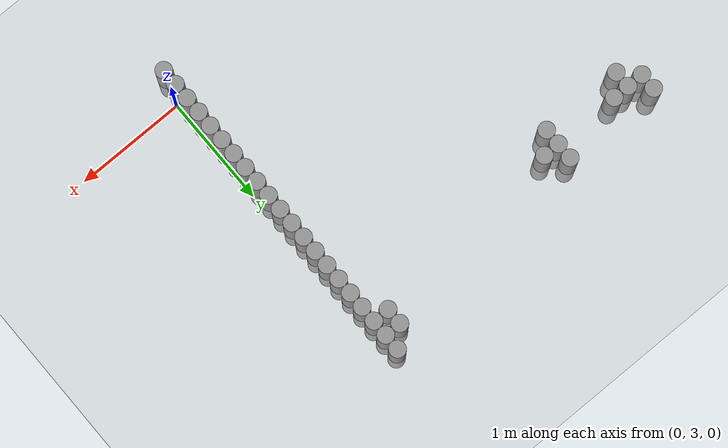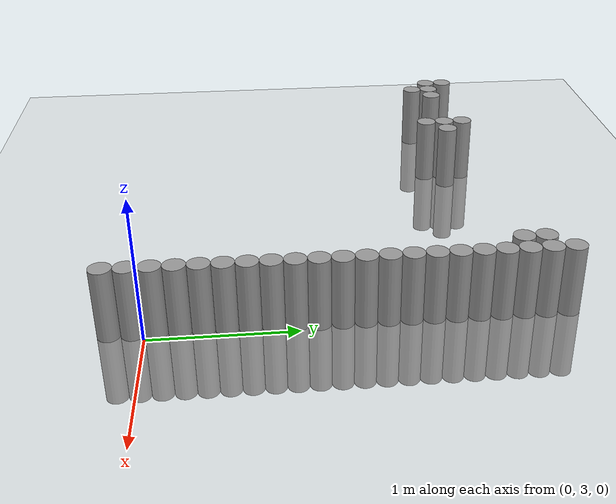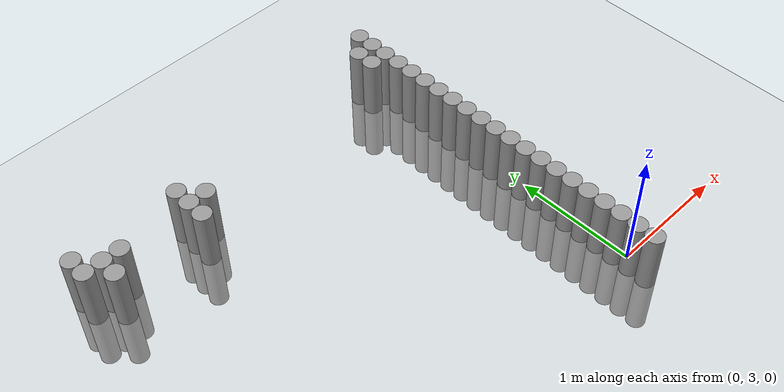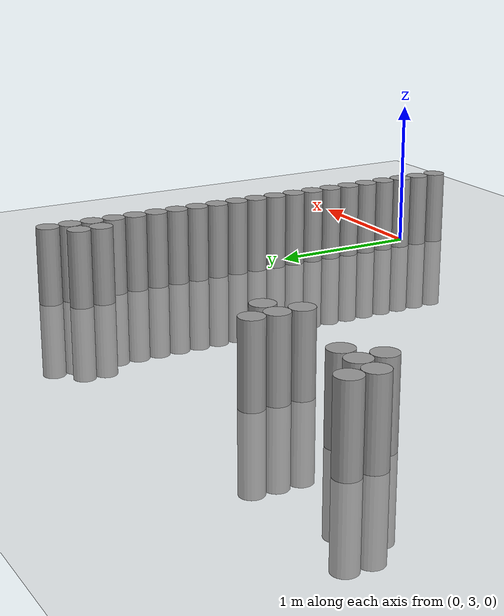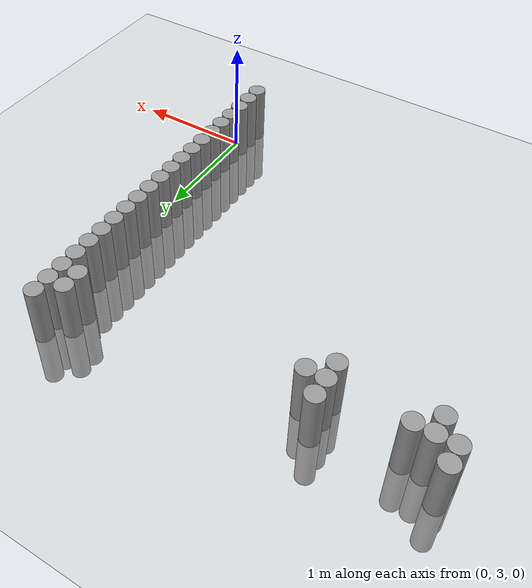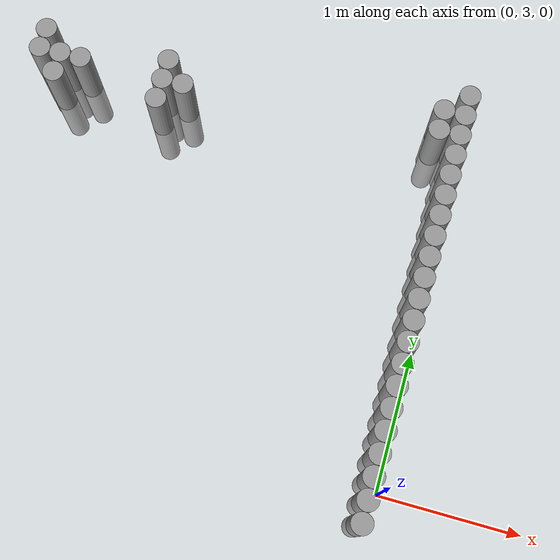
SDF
<sdf version="1.6">
 <world name="default">
  <model name="ground_plane">
   <static>1</static>
   <static>1</static>
   <link name="link">
    <collision name="collision">
     <geometry><plane><normal>0 0 1</normal><size>100 100</size></plane></geometry>
     <surface><friction><ode><mu>100</mu><mu2>50</mu2></ode></friction></surface>
    </collision>
    <visual name="visual">
     <cast_shadows>0</cast_shadows>
     <geometry><plane><normal>0 0 1</normal><size>100 100</size></plane></geometry>
     <material>
      <script><uri>file://media/materials/scripts/gazebo.material</uri><name>Gazebo/Grey</name></script>
     </material>
    </visual>
   </link>
  </model>
  <model name="unit_cylinder_64">
   <static>1</static>
   <pose>-0.075000 2.775000 0.000000 0.000000 0.000000 0.000000</pose>
   <link name="link">
    <inertial>
     <mass>1</mass>
     <inertia><ixx>0.145833</ixx><ixy>0</ixy><ixz>0</ixz><iyy>0.145833</iyy><iyz>0</iyz><izz>0.125</izz></inertia>
    </inertial>
    <collision name="collision">
     <geometry><cylinder><radius>0.075000</radius><length>1</length></cylinder></geometry>
    </collision>
    <visual name="visual">
     <geometry><cylinder><radius>0.075000</radius><length>1</length></cylinder></geometry>
     <material>
      <script><name>Gazebo/Grey</name><uri>file://media/materials/scripts/gazebo.material</uri></script>
     </material>
    </visual>
   </link>
  </model>
  <model name="unit_cylinder_66">
   <static>1</static>
   <pose>-0.075000 2.925000 0.000000 0.000000 0.000000 0.000000</pose>
   <link name="link">
    <inertial>
     <mass>1</mass>
     <inertia><ixx>0.145833</ixx><ixy>0</ixy><ixz>0</ixz><iyy>0.145833</iyy><iyz>0</iyz><izz>0.125</izz></inertia>
    </inertial>
    <collision name="collision">
     <geometry><cylinder><radius>0.075000</radius><length>1</length></cylinder></geometry>
    </collision>
    <visual name="visual">
     <geometry><cylinder><radius>0.075000</radius><length>1</length></cylinder></geometry>
     <material>
      <script><name>Gazebo/Grey</name><uri>file://media/materials/scripts/gazebo.material</uri></script>
     </material>
    </visual>
   </link>
  </model>
  <model name="unit_cylinder_68">
   <static>1</static>
   <pose>-0.075000 3.075000 0.000000 0.000000 0.000000 0.000000</pose>
   <link name="link">
    <inertial>
     <mass>1</mass>
     <inertia><ixx>0.145833</ixx><ixy>0</ixy><ixz>0</ixz><iyy>0.145833</iyy><iyz>0</iyz><izz>0.125</izz></inertia>
    </inertial>
    <collision name="collision">
     <geometry><cylinder><radius>0.075000</radius><length>1</length></cylinder></geometry>
    </collision>
    <visual name="visual">
     <geometry><cylinder><radius>0.075000</radius><length>1</length></cylinder></geometry>
     <material>
      <script><name>Gazebo/Grey</name><uri>file://media/materials/scripts/gazebo.material</uri></script>
     </material>
    </visual>
   </link>
  </model>
  <model name="unit_cylinder_70">
   <static>1</static>
   <pose>-0.075000 3.225000 0.000000 0.000000 0.000000 0.000000</pose>
   <link name="link">
    <inertial>
     <mass>1</mass>
     <inertia><ixx>0.145833</ixx><ixy>0</ixy><ixz>0</ixz><iyy>0.145833</iyy><iyz>0</iyz><izz>0.125</izz></inertia>
    </inertial>
    <collision name="collision">
     <geometry><cylinder><radius>0.075000</radius><length>1</length></cylinder></geometry>
    </collision>
    <visual name="visual">
     <geometry><cylinder><radius>0.075000</radius><length>1</length></cylinder></geometry>
     <material>
      <script><name>Gazebo/Grey</name><uri>file://media/materials/scripts/gazebo.material</uri></script>
     </material>
    </visual>
   </link>
  </model>
  <model name="unit_cylinder_72">
   <static>1</static>
   <pose>-0.075000 3.375000 0.000000 0.000000 0.000000 0.000000</pose>
   <link name="link">
    <inertial>
     <mass>1</mass>
     <inertia><ixx>0.145833</ixx><ixy>0</ixy><ixz>0</ixz><iyy>0.145833</iyy><iyz>0</iyz><izz>0.125</izz></inertia>
    </inertial>
    <collision name="collision">
     <geometry><cylinder><radius>0.075000</radius><length>1</length></cylinder></geometry>
    </collision>
    <visual name="visual">
     <geometry><cylinder><radius>0.075000</radius><length>1</length></cylinder></geometry>
     <material>
      <script><name>Gazebo/Grey</name><uri>file://media/materials/scripts/gazebo.material</uri></script>
     </material>
    </visual>
   </link>
  </model>
  <model name="unit_cylinder_74">
   <static>1</static>
   <pose>-0.075000 3.525000 0.000000 0.000000 0.000000 0.000000</pose>
   <link name="link">
    <inertial>
     <mass>1</mass>
     <inertia><ixx>0.145833</ixx><ixy>0</ixy><ixz>0</ixz><iyy>0.145833</iyy><iyz>0</iyz><izz>0.125</izz></inertia>
    </inertial>
    <collision name="collision">
     <geometry><cylinder><radius>0.075000</radius><length>1</length></cylinder></geometry>
    </collision>
    <visual name="visual">
     <geometry><cylinder><radius>0.075000</radius><length>1</length></cylinder></geometry>
     <material>
      <script><name>Gazebo/Grey</name><uri>file://media/materials/scripts/gazebo.material</uri></script>
     </material>
    </visual>
   </link>
  </model>
  <model name="unit_cylinder_76">
   <static>1</static>
   <pose>-0.075000 3.675000 0.000000 0.000000 0.000000 0.000000</pose>
   <link name="link">
    <inertial>
     <mass>1</mass>
     <inertia><ixx>0.145833</ixx><ixy>0</ixy><ixz>0</ixz><iyy>0.145833</iyy><iyz>0</iyz><izz>0.125</izz></inertia>
    </inertial>
    <collision name="collision">
     <geometry><cylinder><radius>0.075000</radius><length>1</length></cylinder></geometry>
    </collision>
    <visual name="visual">
     <geometry><cylinder><radius>0.075000</radius><length>1</length></cylinder></geometry>
     <material>
      <script><name>Gazebo/Grey</name><uri>file://media/materials/scripts/gazebo.material</uri></script>
     </material>
    </visual>
   </link>
  </model>
  <model name="unit_cylinder_78">
   <static>1</static>
   <pose>-0.075000 3.825000 0.000000 0.000000 0.000000 0.000000</pose>
   <link name="link">
    <inertial>
     <mass>1</mass>
     <inertia><ixx>0.145833</ixx><ixy>0</ixy><ixz>0</ixz><iyy>0.145833</iyy><iyz>0</iyz><izz>0.125</izz></inertia>
    </inertial>
    <collision name="collision">
     <geometry><cylinder><radius>0.075000</radius><length>1</length></cylinder></geometry>
    </collision>
    <visual name="visual">
     <geometry><cylinder><radius>0.075000</radius><length>1</length></cylinder></geometry>
     <material>
      <script><name>Gazebo/Grey</name><uri>file://media/materials/scripts/gazebo.material</uri></script>
     </material>
    </visual>
   </link>
  </model>
  <model name="unit_cylinder_80">
   <static>1</static>
   <pose>-0.075000 3.975000 0.000000 0.000000 0.000000 0.000000</pose>
   <link name="link">
    <inertial>
     <mass>1</mass>
     <inertia><ixx>0.145833</ixx><ixy>0</ixy><ixz>0</ixz><iyy>0.145833</iyy><iyz>0</iyz><izz>0.125</izz></inertia>
    </inertial>
    <collision name="collision">
     <geometry><cylinder><radius>0.075000</radius><length>1</length></cylinder></geometry>
    </collision>
    <visual name="visual">
     <geometry><cylinder><radius>0.075000</radius><length>1</length></cylinder></geometry>
     <material>
      <script><name>Gazebo/Grey</name><uri>file://media/materials/scripts/gazebo.material</uri></script>
     </material>
    </visual>
   </link>
  </model>
  <model name="unit_cylinder_82">
   <static>1</static>
   <pose>-0.075000 4.125000 0.000000 0.000000 0.000000 0.000000</pose>
   <link name="link">
    <inertial>
     <mass>1</mass>
     <inertia><ixx>0.145833</ixx><ixy>0</ixy><ixz>0</ixz><iyy>0.145833</iyy><iyz>0</iyz><izz>0.125</izz></inertia>
    </inertial>
    <collision name="collision">
     <geometry><cylinder><radius>0.075000</radius><length>1</length></cylinder></geometry>
    </collision>
    <visual name="visual">
     <geometry><cylinder><radius>0.075000</radius><length>1</length></cylinder></geometry>
     <material>
      <script><name>Gazebo/Grey</name><uri>file://media/materials/scripts/gazebo.material</uri></script>
     </material>
    </visual>
   </link>
  </model>
  <model name="unit_cylinder_84">
   <static>1</static>
   <pose>-0.075000 4.275000 0.000000 0.000000 0.000000 0.000000</pose>
   <link name="link">
    <inertial>
     <mass>1</mass>
     <inertia><ixx>0.145833</ixx><ixy>0</ixy><ixz>0</ixz><iyy>0.145833</iyy><iyz>0</iyz><izz>0.125</izz></inertia>
    </inertial>
    <collision name="collision">
     <geometry><cylinder><radius>0.075000</radius><length>1</length></cylinder></geometry>
    </collision>
    <visual name="visual">
     <geometry><cylinder><radius>0.075000</radius><length>1</length></cylinder></geometry>
     <material>
      <script><name>Gazebo/Grey</name><uri>file://media/materials/scripts/gazebo.material</uri></script>
     </material>
    </visual>
   </link>
  </model>
  <model name="unit_cylinder_86">
   <static>1</static>
   <pose>-0.075000 4.425000 0.000000 0.000000 0.000000 0.000000</pose>
   <link name="link">
    <inertial>
     <mass>1</mass>
     <inertia><ixx>0.145833</ixx><ixy>0</ixy><ixz>0</ixz><iyy>0.145833</iyy><iyz>0</iyz><izz>0.125</izz></inertia>
    </inertial>
    <collision name="collision">
     <geometry><cylinder><radius>0.075000</radius><length>1</length></cylinder></geometry>
    </collision>
    <visual name="visual">
     <geometry><cylinder><radius>0.075000</radius><length>1</length></cylinder></geometry>
     <material>
      <script><name>Gazebo/Grey</name><uri>file://media/materials/scripts/gazebo.material</uri></script>
     </material>
    </visual>
   </link>
  </model>
  <model name="unit_cylinder_88">
   <static>1</static>
   <pose>-0.075000 4.575000 0.000000 0.000000 0.000000 0.000000</pose>
   <link name="link">
    <inertial>
     <mass>1</mass>
     <inertia><ixx>0.145833</ixx><ixy>0</ixy><ixz>0</ixz><iyy>0.145833</iyy><iyz>0</iyz><izz>0.125</izz></inertia>
    </inertial>
    <collision name="collision">
     <geometry><cylinder><radius>0.075000</radius><length>1</length></cylinder></geometry>
    </collision>
    <visual name="visual">
     <geometry><cylinder><radius>0.075000</radius><length>1</length></cylinder></geometry>
     <material>
      <script><name>Gazebo/Grey</name><uri>file://media/materials/scripts/gazebo.material</uri></script>
     </material>
    </visual>
   </link>
  </model>
  <model name="unit_cylinder_90">
   <static>1</static>
   <pose>-0.075000 4.725000 0.000000 0.000000 0.000000 0.000000</pose>
   <link name="link">
    <inertial>
     <mass>1</mass>
     <inertia><ixx>0.145833</ixx><ixy>0</ixy><ixz>0</ixz><iyy>0.145833</iyy><iyz>0</iyz><izz>0.125</izz></inertia>
    </inertial>
    <collision name="collision">
     <geometry><cylinder><radius>0.075000</radius><length>1</length></cylinder></geometry>
    </collision>
    <visual name="visual">
     <geometry><cylinder><radius>0.075000</radius><length>1</length></cylinder></geometry>
     <material>
      <script><name>Gazebo/Grey</name><uri>file://media/materials/scripts/gazebo.material</uri></script>
     </material>
    </visual>
   </link>
  </model>
  <model name="unit_cylinder_92">
   <static>1</static>
   <pose>-0.075000 4.875000 0.000000 0.000000 0.000000 0.000000</pose>
   <link name="link">
    <inertial>
     <mass>1</mass>
     <inertia><ixx>0.145833</ixx><ixy>0</ixy><ixz>0</ixz><iyy>0.145833</iyy><iyz>0</iyz><izz>0.125</izz></inertia>
    </inertial>
    <collision name="collision">
     <geometry><cylinder><radius>0.075000</radius><length>1</length></cylinder></geometry>
    </collision>
    <visual name="visual">
     <geometry><cylinder><radius>0.075000</radius><length>1</length></cylinder></geometry>
     <material>
      <script><name>Gazebo/Grey</name><uri>file://media/materials/scripts/gazebo.material</uri></script>
     </material>
    </visual>
   </link>
  </model>
  <model name="unit_cylinder_94">
   <static>1</static>
   <pose>-0.075000 5.025000 0.000000 0.000000 0.000000 0.000000</pose>
   <link name="link">
    <inertial>
     <mass>1</mass>
     <inertia><ixx>0.145833</ixx><ixy>0</ixy><ixz>0</ixz><iyy>0.145833</iyy><iyz>0</iyz><izz>0.125</izz></inertia>
    </inertial>
    <collision name="collision">
     <geometry><cylinder><radius>0.075000</radius><length>1</length></cylinder></geometry>
    </collision>
    <visual name="visual">
     <geometry><cylinder><radius>0.075000</radius><length>1</length></cylinder></geometry>
     <material>
      <script><name>Gazebo/Grey</name><uri>file://media/materials/scripts/gazebo.material</uri></script>
     </material>
    </visual>
   </link>
  </model>
  <model name="unit_cylinder_162">
   <static>1</static>
   <pose>-3.075000 5.325000 0.000000 0.000000 0.000000 0.000000</pose>
   <link name="link">
    <inertial>
     <mass>1</mass>
     <inertia><ixx>0.145833</ixx><ixy>0</ixy><ixz>0</ixz><iyy>0.145833</iyy><iyz>0</iyz><izz>0.125</izz></inertia>
    </inertial>
    <collision name="collision">
     <geometry><cylinder><radius>0.075000</radius><length>1</length></cylinder></geometry>
    </collision>
    <visual name="visual">
     <geometry><cylinder><radius>0.075000</radius><length>1</length></cylinder></geometry>
     <material>
      <script><name>Gazebo/Grey</name><uri>file://media/materials/scripts/gazebo.material</uri></script>
     </material>
    </visual>
   </link>
  </model>
  <model name="unit_cylinder_163">
   <static>1</static>
   <pose>-3.075000 5.475000 0.000000 0.000000 0.000000 0.000000</pose>
   <link name="link">
    <inertial>
     <mass>1</mass>
     <inertia><ixx>0.145833</ixx><ixy>0</ixy><ixz>0</ixz><iyy>0.145833</iyy><iyz>0</iyz><izz>0.125</izz></inertia>
    </inertial>
    <collision name="collision">
     <geometry><cylinder><radius>0.075000</radius><length>1</length></cylinder></geometry>
    </collision>
    <visual name="visual">
     <geometry><cylinder><radius>0.075000</radius><length>1</length></cylinder></geometry>
     <material>
      <script><name>Gazebo/Grey</name><uri>file://media/materials/scripts/gazebo.material</uri></script>
     </material>
    </visual>
   </link>
  </model>
  <model name="unit_cylinder_168">
   <static>1</static>
   <pose>-2.925000 5.175000 0.000000 0.000000 0.000000 0.000000</pose>
   <link name="link">
    <inertial>
     <mass>1</mass>
     <inertia><ixx>0.145833</ixx><ixy>0</ixy><ixz>0</ixz><iyy>0.145833</iyy><iyz>0</iyz><izz>0.125</izz></inertia>
    </inertial>
    <collision name="collision">
     <geometry><cylinder><radius>0.075000</radius><length>1</length></cylinder></geometry>
    </collision>
    <visual name="visual">
     <geometry><cylinder><radius>0.075000</radius><length>1</length></cylinder></geometry>
     <material>
      <script><name>Gazebo/Grey</name><uri>file://media/materials/scripts/gazebo.material</uri></script>
     </material>
    </visual>
   </link>
  </model>
  <model name="unit_cylinder_169">
   <static>1</static>
   <pose>-2.925000 5.325000 0.000000 0.000000 0.000000 0.000000</pose>
   <link name="link">
    <inertial>
     <mass>1</mass>
     <inertia><ixx>0.145833</ixx><ixy>0</ixy><ixz>0</ixz><iyy>0.145833</iyy><iyz>0</iyz><izz>0.125</izz></inertia>
    </inertial>
    <collision name="collision">
     <geometry><cylinder><radius>0.075000</radius><length>1</length></cylinder></geometry>
    </collision>
    <visual name="visual">
     <geometry><cylinder><radius>0.075000</radius><length>1</length></cylinder></geometry>
     <material>
      <script><name>Gazebo/Grey</name><uri>file://media/materials/scripts/gazebo.material</uri></script>
     </material>
    </visual>
   </link>
  </model>
  <model name="unit_cylinder_172">
   <static>1</static>
   <pose>-2.775000 5.325000 0.000000 0.000000 0.000000 0.000000</pose>
   <link name="link">
    <inertial>
     <mass>1</mass>
     <inertia><ixx>0.145833</ixx><ixy>0</ixy><ixz>0</ixz><iyy>0.145833</iyy><iyz>0</iyz><izz>0.125</izz></inertia>
    </inertial>
    <collision name="collision">
     <geometry><cylinder><radius>0.075000</radius><length>1</length></cylinder></geometry>
    </collision>
    <visual name="visual">
     <geometry><cylinder><radius>0.075000</radius><length>1</length></cylinder></geometry>
     <material>
      <script><name>Gazebo/Grey</name><uri>file://media/materials/scripts/gazebo.material</uri></script>
     </material>
    </visual>
   </link>
  </model>
  <model name="unit_cylinder_179">
   <static>1</static>
   <pose>-2.175000 5.175000 0.000000 0.000000 0.000000 0.000000</pose>
   <link name="link">
    <inertial>
     <mass>1</mass>
     <inertia><ixx>0.145833</ixx><ixy>0</ixy><ixz>0</ixz><iyy>0.145833</iyy><iyz>0</iyz><izz>0.125</izz></inertia>
    </inertial>
    <collision name="collision">
     <geometry><cylinder><radius>0.075000</radius><length>1</length></cylinder></geometry>
    </collision>
    <visual name="visual">
     <geometry><cylinder><radius>0.075000</radius><length>1</length></cylinder></geometry>
     <material>
      <script><name>Gazebo/Grey</name><uri>file://media/materials/scripts/gazebo.material</uri></script>
     </material>
    </visual>
   </link>
  </model>
  <model name="unit_cylinder_180">
   <static>1</static>
   <pose>-2.175000 5.325000 0.000000 0.000000 0.000000 0.000000</pose>
   <link name="link">
    <inertial>
     <mass>1</mass>
     <inertia><ixx>0.145833</ixx><ixy>0</ixy><ixz>0</ixz><iyy>0.145833</iyy><iyz>0</iyz><izz>0.125</izz></inertia>
    </inertial>
    <collision name="collision">
     <geometry><cylinder><radius>0.075000</radius><length>1</length></cylinder></geometry>
    </collision>
    <visual name="visual">
     <geometry><cylinder><radius>0.075000</radius><length>1</length></cylinder></geometry>
     <material>
      <script><name>Gazebo/Grey</name><uri>file://media/materials/scripts/gazebo.material</uri></script>
     </material>
    </visual>
   </link>
  </model>
  <model name="unit_cylinder_181">
   <static>1</static>
   <pose>-2.175000 5.475000 0.000000 0.000000 0.000000 0.000000</pose>
   <link name="link">
    <inertial>
     <mass>1</mass>
     <inertia><ixx>0.145833</ixx><ixy>0</ixy><ixz>0</ixz><iyy>0.145833</iyy><iyz>0</iyz><izz>0.125</izz></inertia>
    </inertial>
    <collision name="collision">
     <geometry><cylinder><radius>0.075000</radius><length>1</length></cylinder></geometry>
    </collision>
    <visual name="visual">
     <geometry><cylinder><radius>0.075000</radius><length>1</length></cylinder></geometry>
     <material>
      <script><name>Gazebo/Grey</name><uri>file://media/materials/scripts/gazebo.material</uri></script>
     </material>
    </visual>
   </link>
  </model>
  <model name="unit_cylinder_184">
   <static>1</static>
   <pose>-2.025000 5.325000 0.000000 0.000000 0.000000 0.000000</pose>
   <link name="link">
    <inertial>
     <mass>1</mass>
     <inertia><ixx>0.145833</ixx><ixy>0</ixy><ixz>0</ixz><iyy>0.145833</iyy><iyz>0</iyz><izz>0.125</izz></inertia>
    </inertial>
    <collision name="collision">
     <geometry><cylinder><radius>0.075000</radius><length>1</length></cylinder></geometry>
    </collision>
    <visual name="visual">
     <geometry><cylinder><radius>0.075000</radius><length>1</length></cylinder></geometry>
     <material>
      <script><name>Gazebo/Grey</name><uri>file://media/materials/scripts/gazebo.material</uri></script>
     </material>
    </visual>
   </link>
  </model>
  <model name="unit_cylinder_213">
   <static>1</static>
   <pose>-0.225000 5.475000 0.000000 0.000000 0.000000 0.000000</pose>
   <link name="link">
    <inertial>
     <mass>1</mass>
     <inertia><ixx>0.145833</ixx><ixy>0</ixy><ixz>0</ixz><iyy>0.145833</iyy><iyz>0</iyz><izz>0.125</izz></inertia>
    </inertial>
    <collision name="collision">
     <geometry><cylinder><radius>0.075000</radius><length>1</length></cylinder></geometry>
    </collision>
    <visual name="visual">
     <geometry><cylinder><radius>0.075000</radius><length>1</length></cylinder></geometry>
     <material>
      <script><name>Gazebo/Grey</name><uri>file://media/materials/scripts/gazebo.material</uri></script>
     </material>
    </visual>
   </link>
  </model>
  <model name="unit_cylinder_214">
   <static>1</static>
   <pose>-0.225000 5.625000 0.000000 0.000000 0.000000 0.000000</pose>
   <link name="link">
    <inertial>
     <mass>1</mass>
     <inertia><ixx>0.145833</ixx><ixy>0</ixy><ixz>0</ixz><iyy>0.145833</iyy><iyz>0</iyz><izz>0.125</izz></inertia>
    </inertial>
    <collision name="collision">
     <geometry><cylinder><radius>0.075000</radius><length>1</length></cylinder></geometry>
    </collision>
    <visual name="visual">
     <geometry><cylinder><radius>0.075000</radius><length>1</length></cylinder></geometry>
     <material>
      <script><name>Gazebo/Grey</name><uri>file://media/materials/scripts/gazebo.material</uri></script>
     </material>
    </visual>
   </link>
  </model>
  <model name="unit_cylinder_224">
   <static>1</static>
   <pose>-0.075000 5.175000 0.000000 0.000000 0.000000 0.000000</pose>
   <link name="link">
    <inertial>
     <mass>1</mass>
     <inertia><ixx>0.145833</ixx><ixy>0</ixy><ixz>0</ixz><iyy>0.145833</iyy><iyz>0</iyz><izz>0.125</izz></inertia>
    </inertial>
    <collision name="collision">
     <geometry><cylinder><radius>0.075000</radius><length>1</length></cylinder></geometry>
    </collision>
    <visual name="visual">
     <geometry><cylinder><radius>0.075000</radius><length>1</length></cylinder></geometry>
     <material>
      <script><name>Gazebo/Grey</name><uri>file://media/materials/scripts/gazebo.material</uri></script>
     </material>
    </visual>
   </link>
  </model>
  <model name="unit_cylinder_225">
   <static>1</static>
   <pose>-0.075000 5.325000 0.000000 0.000000 0.000000 0.000000</pose>
   <link name="link">
    <inertial>
     <mass>1</mass>
     <inertia><ixx>0.145833</ixx><ixy>0</ixy><ixz>0</ixz><iyy>0.145833</iyy><iyz>0</iyz><izz>0.125</izz></inertia>
    </inertial>
    <collision name="collision">
     <geometry><cylinder><radius>0.075000</radius><length>1</length></cylinder></geometry>
    </collision>
    <visual name="visual">
     <geometry><cylinder><radius>0.075000</radius><length>1</length></cylinder></geometry>
     <material>
      <script><name>Gazebo/Grey</name><uri>file://media/materials/scripts/gazebo.material</uri></script>
     </material>
    </visual>
   </link>
  </model>
  <model name="unit_cylinder_226">
   <static>1</static>
   <pose>-0.075000 5.475000 0.000000 0.000000 0.000000 0.000000</pose>
   <link name="link">
    <inertial>
     <mass>1</mass>
     <inertia><ixx>0.145833</ixx><ixy>0</ixy><ixz>0</ixz><iyy>0.145833</iyy><iyz>0</iyz><izz>0.125</izz></inertia>
    </inertial>
    <collision name="collision">
     <geometry><cylinder><radius>0.075000</radius><length>1</length></cylinder></geometry>
    </collision>
    <visual name="visual">
     <geometry><cylinder><radius>0.075000</radius><length>1</length></cylinder></geometry>
     <material>
      <script><name>Gazebo/Grey</name><uri>file://media/materials/scripts/gazebo.material</uri></script>
     </material>
    </visual>
   </link>
  </model>
  <model name="unit_cylinder_227">
   <static>1</static>
   <pose>-0.075000 5.625000 0.000000 0.000000 0.000000 0.000000</pose>
   <link name="link">
    <inertial>
     <mass>1</mass>
     <inertia><ixx>0.145833</ixx><ixy>0</ixy><ixz>0</ixz><iyy>0.145833</iyy><iyz>0</iyz><izz>0.125</izz></inertia>
    </inertial>
    <collision name="collision">
     <geometry><cylinder><radius>0.075000</radius><length>1</length></cylinder></geometry>
    </collision>
    <visual name="visual">
     <geometry><cylinder><radius>0.075000</radius><length>1</length></cylinder></geometry>
     <material>
      <script><name>Gazebo/Grey</name><uri>file://media/materials/scripts/gazebo.material</uri></script>
     </material>
    </visual>
   </link>
  </model>
  <model name="unit_cylinder_228">
   <static>1</static>
   <pose>-0.075000 5.775000 0.000000 0.000000 0.000000 0.000000</pose>
   <link name="link">
    <inertial>
     <mass>1</mass>
     <inertia><ixx>0.145833</ixx><ixy>0</ixy><ixz>0</ixz><iyy>0.145833</iyy><iyz>0</iyz><izz>0.125</izz></inertia>
    </inertial>
    <collision name="collision">
     <geometry><cylinder><radius>0.075000</radius><length>1</length></cylinder></geometry>
    </collision>
    <visual name="visual">
     <geometry><cylinder><radius>0.075000</radius><length>1</length></cylinder></geometry>
     <material>
      <script><name>Gazebo/Grey</name><uri>file://media/materials/scripts/gazebo.material</uri></script>
     </material>
    </visual>
   </link>
  </model>
 </world>
</sdf>
